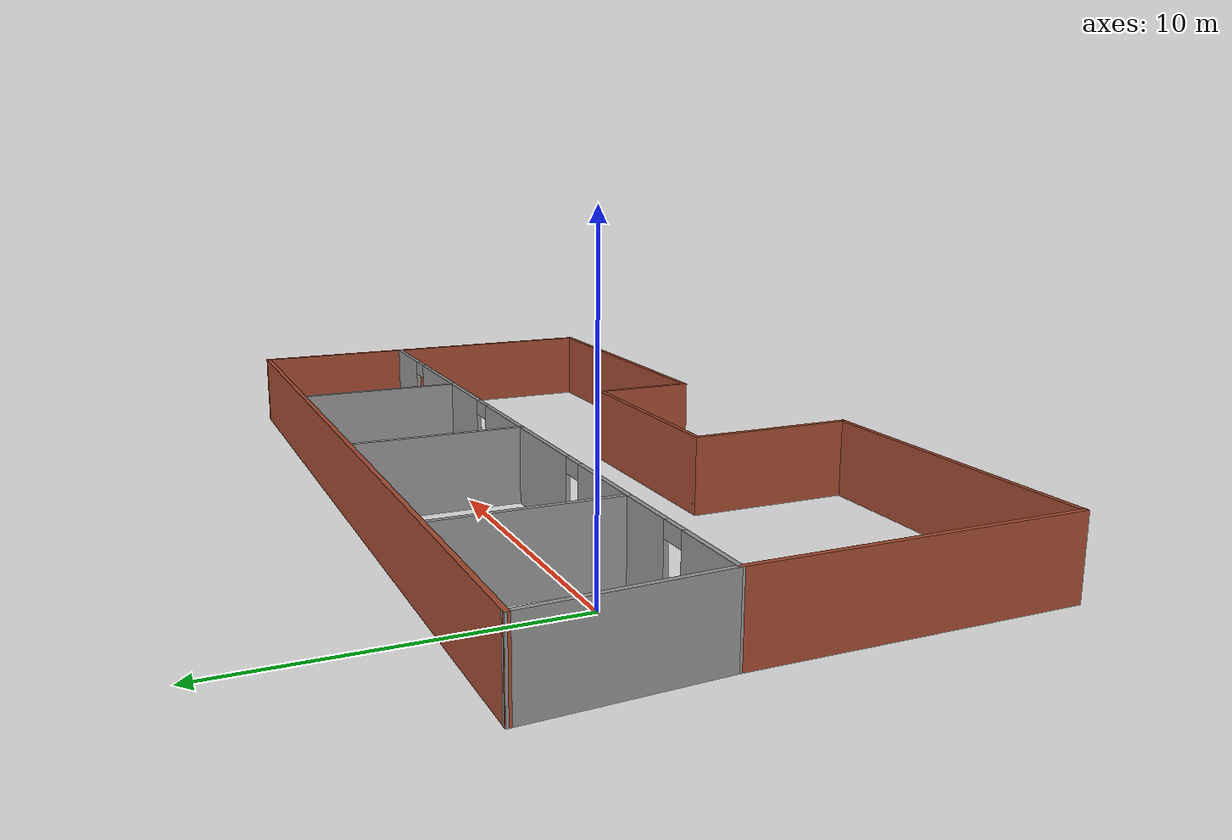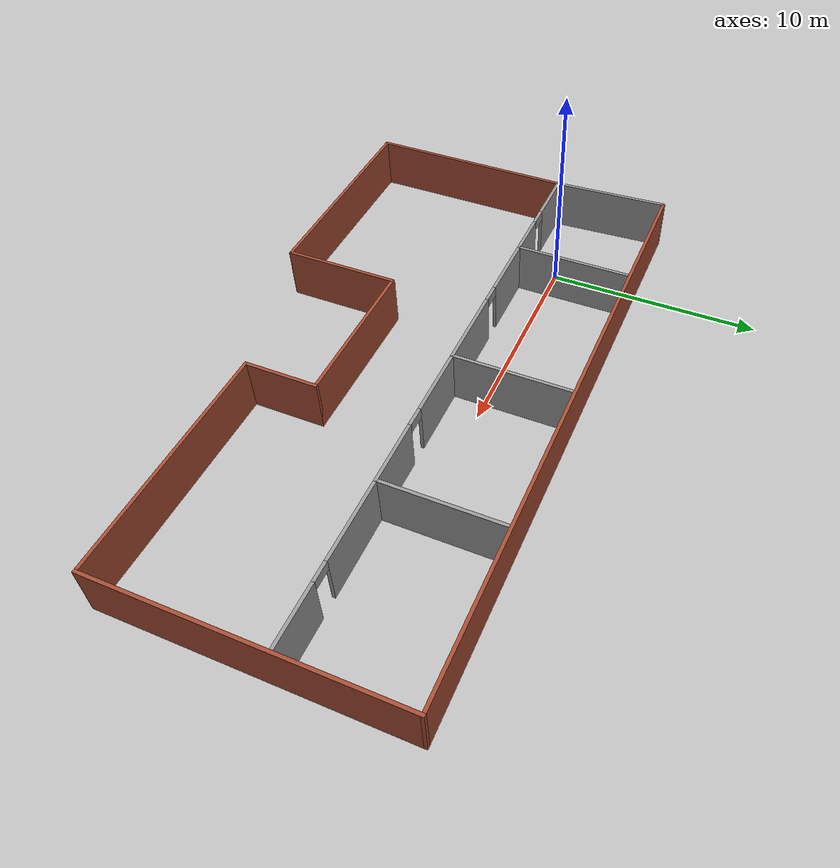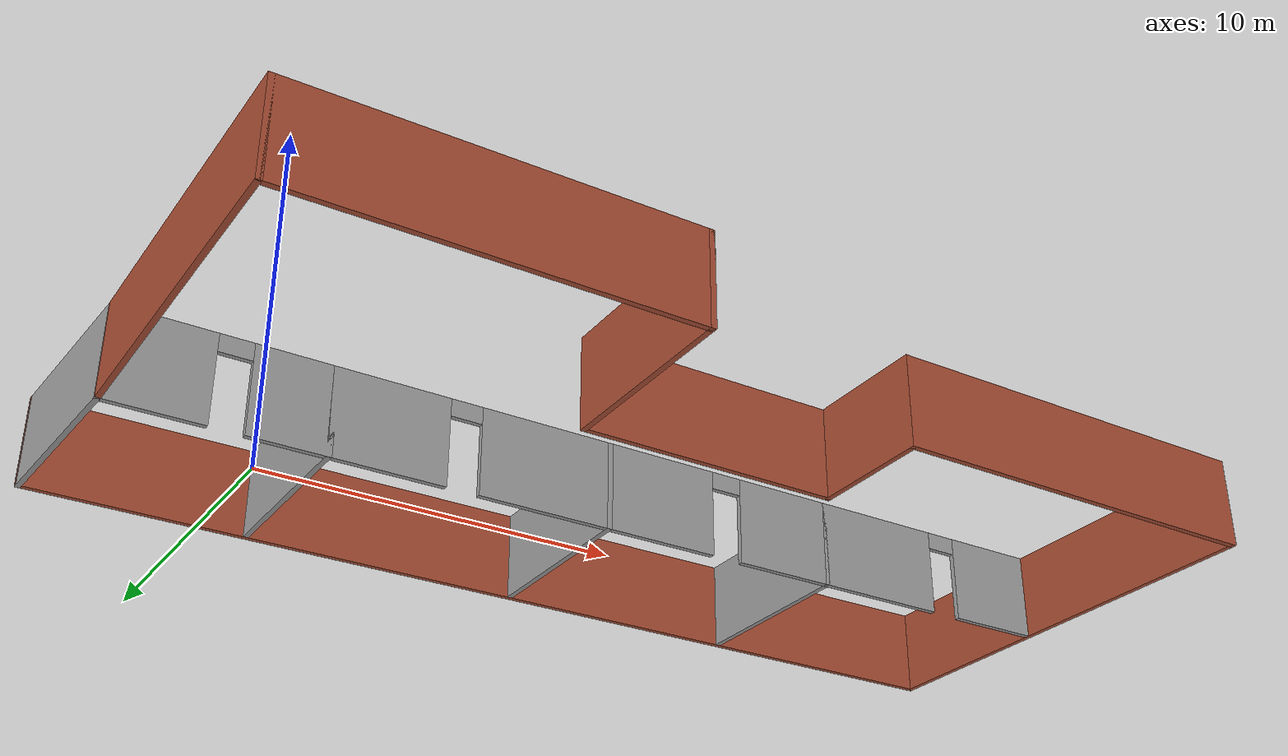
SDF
<?xml version='1.0'?>
<sdf version='1.6'>
  <model name='MyOffice'>
    <pose frame=''>9.60301 -3.65301 0 0 -0 0</pose>
    <link name='Wall_0'>
      <collision name='Wall_0_Collision'>
        <geometry>
          <box>
            <size>10 0.15 2.5</size>
          </box>
        </geometry>
        <pose frame=''>0 0 1.25 0 -0 0</pose>
      </collision>
      <visual name='Wall_0_Visual'>
        <pose frame=''>0 0 1.25 0 -0 0</pose>
        <geometry>
          <box>
            <size>10 0.15 2.5</size>
          </box>
        </geometry>
        <material>
          <script>
            <uri>file://media/materials/scripts/gazebo.material</uri>
            <name>Gazebo/Bricks</name>
          </script>
          <ambient>1 1 1 1</ambient>
        </material>
        <meta>
          <layer>0</layer>
        </meta>
      </visual>
      <pose frame=''>-13.873 -2.75199 0 0 0 -1.5708</pose>
    </link>
    <link name='Wall_1'>
      <collision name='Wall_1_Collision'>
        <geometry>
          <box>
            <size>10.25 0.15 2.5</size>
          </box>
        </geometry>
        <pose frame=''>0 0 1.25 0 -0 0</pose>
      </collision>
      <visual name='Wall_1_Visual'>
        <pose frame=''>0 0 1.25 0 -0 0</pose>
        <geometry>
          <box>
            <size>10.25 0.15 2.5</size>
          </box>
        </geometry>
        <material>
          <script>
            <uri>file://media/materials/scripts/gazebo.material</uri>
            <name>Gazebo/Bricks</name>
          </script>
          <ambient>1 1 1 1</ambient>
        </material>
        <meta>
          <layer>0</layer>
        </meta>
      </visual>
      <pose frame=''>-8.82301 -7.67699 0 0 -0 0</pose>
    </link>
    <link name='Wall_10'>
      <collision name='Wall_10_Collision'>
        <geometry>
          <box>
            <size>5.5 0.15 2.5</size>
          </box>
        </geometry>
        <pose frame=''>0 0 1.25 0 -0 0</pose>
      </collision>
      <visual name='Wall_10_Visual'>
        <pose frame=''>0 0 1.25 0 -0 0</pose>
        <geometry>
          <box>
            <size>5.5 0.15 2.5</size>
          </box>
        </geometry>
        <material>
          <script>
            <uri>file://media/materials/scripts/gazebo.material</uri>
            <name>Gazebo/Grey</name>
          </script>
          <ambient>1 1 1 1</ambient>
        </material>
        <meta>
          <layer>0</layer>
        </meta>
      </visual>
      <pose frame=''>-8.27301 4.84801 0 0 -0 1.5708</pose>
    </link>
    <link name='Wall_12'>
      <pose frame=''>-4.34801 2.17301 0 0 -0 0</pose>
      <visual name='Wall_12_Visual_0'>
        <pose frame=''>-2.39397 0 1.25 0 -0 0</pose>
        <geometry>
          <box>
            <size>3.21206 0.15 2.5</size>
          </box>
        </geometry>
        <material>
          <script>
            <uri>file://media/materials/scripts/gazebo.material</uri>
            <name>Gazebo/Grey</name>
          </script>
          <ambient>1 1 1 1</ambient>
        </material>
        <meta>
          <layer>0</layer>
        </meta>
      </visual>
      <collision name='Wall_12_Collision_0'>
        <geometry>
          <box>
            <size>3.21206 0.15 2.5</size>
          </box>
        </geometry>
        <pose frame=''>-2.39397 0 1.25 0 -0 0</pose>
      </collision>
      <visual name='Wall_12_Visual_1'>
        <pose frame=''>2.05603 0 1.25 0 -0 0</pose>
        <geometry>
          <box>
            <size>3.88794 0.15 2.5</size>
          </box>
        </geometry>
        <material>
          <script>
            <uri>file://media/materials/scripts/gazebo.material</uri>
            <name>Gazebo/Grey</name>
          </script>
          <ambient>1 1 1 1</ambient>
        </material>
        <meta>
          <layer>0</layer>
        </meta>
      </visual>
      <collision name='Wall_12_Collision_1'>
        <geometry>
          <box>
            <size>3.88794 0.15 2.5</size>
          </box>
        </geometry>
        <pose frame=''>2.05603 0 1.25 0 -0 0</pose>
      </collision>
      <visual name='Wall_12_Visual_2'>
        <pose frame=''>-0.337937 0 2.25 0 -0 0</pose>
        <geometry>
          <box>
            <size>0.9 0.15 0.5</size>
          </box>
        </geometry>
        <material>
          <script>
            <uri>file://media/materials/scripts/gazebo.material</uri>
            <name>Gazebo/Grey</name>
          </script>
          <ambient>1 1 1 1</ambient>
        </material>
        <meta>
          <layer>0</layer>
        </meta>
      </visual>
      <collision name='Wall_12_Collision_2'>
        <geometry>
          <box>
            <size>0.9 0.15 0.5</size>
          </box>
        </geometry>
        <pose frame=''>-0.337937 0 2.25 0 -0 0</pose>
      </collision>
    </link>
    <link name='Wall_13'>
      <collision name='Wall_13_Collision'>
        <geometry>
          <box>
            <size>5.5 0.15 2.5</size>
          </box>
        </geometry>
        <pose frame=''>0 0 1.25 0 -0 0</pose>
      </collision>
      <visual name='Wall_13_Visual'>
        <pose frame=''>0 0 1.25 0 -0 0</pose>
        <geometry>
          <box>
            <size>5.5 0.15 2.5</size>
          </box>
        </geometry>
        <material>
          <script>
            <uri>file://media/materials/scripts/gazebo.material</uri>
            <name>Gazebo/Grey</name>
          </script>
          <ambient>1 1 1 1</ambient>
        </material>
        <meta>
          <layer>0</layer>
        </meta>
      </visual>
      <pose frame=''>-0.423014 4.84801 0 0 -0 1.5708</pose>
    </link>
    <link name='Wall_15'>
      <pose frame=''>3.12699 2.17301 0 0 -0 0</pose>
      <visual name='Wall_15_Visual_0'>
        <pose frame=''>-1.95623 0 1.25 0 -0 0</pose>
        <geometry>
          <box>
            <size>3.33753 0.15 2.5</size>
          </box>
        </geometry>
        <material>
          <script>
            <uri>file://media/materials/scripts/gazebo.material</uri>
            <name>Gazebo/Grey</name>
          </script>
          <ambient>1 1 1 1</ambient>
        </material>
        <meta>
          <layer>0</layer>
        </meta>
      </visual>
      <collision name='Wall_15_Collision_0'>
        <geometry>
          <box>
            <size>3.33753 0.15 2.5</size>
          </box>
        </geometry>
        <pose frame=''>-1.95623 0 1.25 0 -0 0</pose>
      </collision>
      <visual name='Wall_15_Visual_1'>
        <pose frame=''>2.11877 0 1.25 0 -0 0</pose>
        <geometry>
          <box>
            <size>3.01247 0.15 2.5</size>
          </box>
        </geometry>
        <material>
          <script>
            <uri>file://media/materials/scripts/gazebo.material</uri>
            <name>Gazebo/Grey</name>
          </script>
          <ambient>1 1 1 1</ambient>
        </material>
        <meta>
          <layer>0</layer>
        </meta>
      </visual>
      <collision name='Wall_15_Collision_1'>
        <geometry>
          <box>
            <size>3.01247 0.15 2.5</size>
          </box>
        </geometry>
        <pose frame=''>2.11877 0 1.25 0 -0 0</pose>
      </collision>
      <visual name='Wall_15_Visual_2'>
        <pose frame=''>0.162532 0 2.25 0 -0 0</pose>
        <geometry>
          <box>
            <size>0.9 0.15 0.5</size>
          </box>
        </geometry>
        <material>
          <script>
            <uri>file://media/materials/scripts/gazebo.material</uri>
            <name>Gazebo/Grey</name>
          </script>
          <ambient>1 1 1 1</ambient>
        </material>
        <meta>
          <layer>0</layer>
        </meta>
      </visual>
      <collision name='Wall_15_Collision_2'>
        <geometry>
          <box>
            <size>0.9 0.15 0.5</size>
          </box>
        </geometry>
        <pose frame=''>0.162532 0 2.25 0 -0 0</pose>
      </collision>
    </link>
    <link name='Wall_16'>
      <collision name='Wall_16_Collision'>
        <geometry>
          <box>
            <size>5.5 0.15 2.5</size>
          </box>
        </geometry>
        <pose frame=''>0 0 1.25 0 -0 0</pose>
      </collision>
      <visual name='Wall_16_Visual'>
        <pose frame=''>0 0 1.25 0 -0 0</pose>
        <geometry>
          <box>
            <size>5.5 0.15 2.5</size>
          </box>
        </geometry>
        <material>
          <script>
            <uri>file://media/materials/scripts/gazebo.material</uri>
            <name>Gazebo/Grey</name>
          </script>
          <ambient>1 1 1 1</ambient>
        </material>
        <meta>
          <layer>0</layer>
        </meta>
      </visual>
      <pose frame=''>6.67699 4.84801 0 0 -0 1.5708</pose>
    </link>
    <link name='Wall_18'>
      <pose frame=''>10.352 2.17301 0 0 -0 0</pose>
      <visual name='Wall_18_Visual_0'>
        <pose frame=''>-1.80674 0 1.25 0 -0 0</pose>
        <geometry>
          <box>
            <size>3.88652 0.15 2.5</size>
          </box>
        </geometry>
        <material>
          <script>
            <uri>file://media/materials/scripts/gazebo.material</uri>
            <name>Gazebo/Grey</name>
          </script>
          <ambient>1 1 1 1</ambient>
        </material>
        <meta>
          <layer>0</layer>
        </meta>
      </visual>
      <collision name='Wall_18_Collision_0'>
        <geometry>
          <box>
            <size>3.88652 0.15 2.5</size>
          </box>
        </geometry>
        <pose frame=''>-1.80674 0 1.25 0 -0 0</pose>
      </collision>
      <visual name='Wall_18_Visual_1'>
        <pose frame=''>2.39326 0 1.25 0 -0 0</pose>
        <geometry>
          <box>
            <size>2.71348 0.15 2.5</size>
          </box>
        </geometry>
        <material>
          <script>
            <uri>file://media/materials/scripts/gazebo.material</uri>
            <name>Gazebo/Grey</name>
          </script>
          <ambient>1 1 1 1</ambient>
        </material>
        <meta>
          <layer>0</layer>
        </meta>
      </visual>
      <collision name='Wall_18_Collision_1'>
        <geometry>
          <box>
            <size>2.71348 0.15 2.5</size>
          </box>
        </geometry>
        <pose frame=''>2.39326 0 1.25 0 -0 0</pose>
      </collision>
      <visual name='Wall_18_Visual_2'>
        <pose frame=''>0.586519 0 2.25 0 -0 0</pose>
        <geometry>
          <box>
            <size>0.9 0.15 0.5</size>
          </box>
        </geometry>
        <material>
          <script>
            <uri>file://media/materials/scripts/gazebo.material</uri>
            <name>Gazebo/Grey</name>
          </script>
          <ambient>1 1 1 1</ambient>
        </material>
        <meta>
          <layer>0</layer>
        </meta>
      </visual>
      <collision name='Wall_18_Collision_2'>
        <geometry>
          <box>
            <size>0.9 0.15 0.5</size>
          </box>
        </geometry>
        <pose frame=''>0.586519 0 2.25 0 -0 0</pose>
      </collision>
    </link>
    <link name='Wall_2'>
      <collision name='Wall_2_Collision'>
        <geometry>
          <box>
            <size>5.5 0.15 2.5</size>
          </box>
        </geometry>
        <pose frame=''>0 0 1.25 0 -0 0</pose>
      </collision>
      <visual name='Wall_2_Visual'>
        <pose frame=''>0 0 1.25 0 -0 0</pose>
        <geometry>
          <box>
            <size>5.5 0.15 2.5</size>
          </box>
        </geometry>
        <material>
          <script>
            <uri>file://media/materials/scripts/gazebo.material</uri>
            <name>Gazebo/Bricks</name>
          </script>
          <ambient>1 1 1 1</ambient>
        </material>
        <meta>
          <layer>0</layer>
        </meta>
      </visual>
      <pose frame=''>-3.77301 -5.00199 0 0 -0 1.5708</pose>
    </link>
    <link name='Wall_3'>
      <collision name='Wall_3_Collision'>
        <geometry>
          <box>
            <size>7.25 0.15 2.5</size>
          </box>
        </geometry>
        <pose frame=''>0 0 1.25 0 -0 0</pose>
      </collision>
      <visual name='Wall_3_Visual'>
        <pose frame=''>0 0 1.25 0 -0 0</pose>
        <geometry>
          <box>
            <size>7.25 0.15 2.5</size>
          </box>
        </geometry>
        <material>
          <script>
            <uri>file://media/materials/scripts/gazebo.material</uri>
            <name>Gazebo/Bricks</name>
          </script>
          <ambient>1 1 1 1</ambient>
        </material>
        <meta>
          <layer>0</layer>
        </meta>
      </visual>
      <pose frame=''>-0.223014 -2.32699 0 0 -0 0</pose>
    </link>
    <link name='Wall_4'>
      <collision name='Wall_4_Collision'>
        <geometry>
          <box>
            <size>3.5 0.15 2.5</size>
          </box>
        </geometry>
        <pose frame=''>0 0 1.25 0 -0 0</pose>
      </collision>
      <visual name='Wall_4_Visual'>
        <pose frame=''>0 0 1.25 0 -0 0</pose>
        <geometry>
          <box>
            <size>3.5 0.15 2.5</size>
          </box>
        </geometry>
        <material>
          <script>
            <uri>file://media/materials/scripts/gazebo.material</uri>
            <name>Gazebo/Bricks</name>
          </script>
          <ambient>1 1 1 1</ambient>
        </material>
        <meta>
          <layer>0</layer>
        </meta>
      </visual>
      <pose frame=''>3.32699 -4.00199 0 0 0 -1.5708</pose>
    </link>
    <link name='Wall_5'>
      <collision name='Wall_5_Collision'>
        <geometry>
          <box>
            <size>11 0.15 2.5</size>
          </box>
        </geometry>
        <pose frame=''>0 0 1.25 0 -0 0</pose>
      </collision>
      <visual name='Wall_5_Visual'>
        <pose frame=''>0 0 1.25 0 -0 0</pose>
        <geometry>
          <box>
            <size>11 0.15 2.5</size>
          </box>
        </geometry>
        <material>
          <script>
            <uri>file://media/materials/scripts/gazebo.material</uri>
            <name>Gazebo/Bricks</name>
          </script>
          <ambient>1 1 1 1</ambient>
        </material>
        <meta>
          <layer>0</layer>
        </meta>
      </visual>
      <pose frame=''>8.75199 -5.67699 0 0 -0 0</pose>
    </link>
    <link name='Wall_6'>
      <collision name='Wall_6_Collision'>
        <geometry>
          <box>
            <size>13.5 0.15 2.5</size>
          </box>
        </geometry>
        <pose frame=''>0 0 1.25 0 -0 0</pose>
      </collision>
      <visual name='Wall_6_Visual'>
        <pose frame=''>0 0 1.25 0 -0 0</pose>
        <geometry>
          <box>
            <size>13.5 0.15 2.5</size>
          </box>
        </geometry>
        <material>
          <script>
            <uri>file://media/materials/scripts/gazebo.material</uri>
            <name>Gazebo/Bricks</name>
          </script>
          <ambient>1 1 1 1</ambient>
        </material>
        <meta>
          <layer>0</layer>
        </meta>
      </visual>
      <pose frame=''>14.177 0.998013 0 0 -0 1.5708</pose>
    </link>
    <link name='Wall_7'>
      <collision name='Wall_7_Collision'>
        <geometry>
          <box>
            <size>28.5 0.15 2.5</size>
          </box>
        </geometry>
        <pose frame=''>0 0 1.25 0 -0 0</pose>
      </collision>
      <visual name='Wall_7_Visual'>
        <pose frame=''>0 0 1.25 0 -0 0</pose>
        <geometry>
          <box>
            <size>28.5 0.15 2.5</size>
          </box>
        </geometry>
        <material>
          <script>
            <uri>file://media/materials/scripts/gazebo.material</uri>
            <name>Gazebo/Bricks</name>
          </script>
          <ambient>1 1 1 1</ambient>
        </material>
        <meta>
          <layer>0</layer>
        </meta>
      </visual>
      <pose frame=''>0.001986 7.67301 0 0 -0 3.14159</pose>
    </link>
    <link name='Wall_8'>
      <collision name='Wall_8_Collision'>
        <geometry>
          <box>
            <size>5.65818 0.15 2.5</size>
          </box>
        </geometry>
        <pose frame=''>0 0 1.25 0 -0 0</pose>
      </collision>
      <visual name='Wall_8_Visual'>
        <pose frame=''>0 0 1.25 0 -0 0</pose>
        <geometry>
          <box>
            <size>5.65818 0.15 2.5</size>
          </box>
        </geometry>
        <material>
          <script>
            <uri>file://media/materials/scripts/gazebo.material</uri>
            <name>Gazebo/Grey</name>
          </script>
          <ambient>1 1 1 1</ambient>
        </material>
        <meta>
          <layer>0</layer>
        </meta>
      </visual>
      <pose frame=''>-14.023 4.92301 0 0 0 -1.51631</pose>
    </link>
    <link name='Wall_9'>
      <pose frame=''>-11.073 2.17301 0 0 -0 0</pose>
      <visual name='Wall_9_Visual_0'>
        <pose frame=''>-1.54722 0 1.25 0 -0 0</pose>
        <geometry>
          <box>
            <size>2.65556 0.15 2.5</size>
          </box>
        </geometry>
        <material>
          <script>
            <uri>file://media/materials/scripts/gazebo.material</uri>
            <name>Gazebo/Grey</name>
          </script>
          <ambient>1 1 1 1</ambient>
        </material>
        <meta>
          <layer>0</layer>
        </meta>
      </visual>
      <collision name='Wall_9_Collision_0'>
        <geometry>
          <box>
            <size>2.65556 0.15 2.5</size>
          </box>
        </geometry>
        <pose frame=''>-1.54722 0 1.25 0 -0 0</pose>
      </collision>
      <visual name='Wall_9_Visual_1'>
        <pose frame=''>1.77778 0 1.25 0 -0 0</pose>
        <geometry>
          <box>
            <size>2.19444 0.15 2.5</size>
          </box>
        </geometry>
        <material>
          <script>
            <uri>file://media/materials/scripts/gazebo.material</uri>
            <name>Gazebo/Grey</name>
          </script>
          <ambient>1 1 1 1</ambient>
        </material>
        <meta>
          <layer>0</layer>
        </meta>
      </visual>
      <collision name='Wall_9_Collision_1'>
        <geometry>
          <box>
            <size>2.19444 0.15 2.5</size>
          </box>
        </geometry>
        <pose frame=''>1.77778 0 1.25 0 -0 0</pose>
      </collision>
      <visual name='Wall_9_Visual_2'>
        <pose frame=''>0.230561 0 2.25 0 -0 0</pose>
        <geometry>
          <box>
            <size>0.9 0.15 0.5</size>
          </box>
        </geometry>
        <material>
          <script>
            <uri>file://media/materials/scripts/gazebo.material</uri>
            <name>Gazebo/Grey</name>
          </script>
          <ambient>1 1 1 1</ambient>
        </material>
        <meta>
          <layer>0</layer>
        </meta>
      </visual>
      <collision name='Wall_9_Collision_2'>
        <geometry>
          <box>
            <size>0.9 0.15 0.5</size>
          </box>
        </geometry>
        <pose frame=''>0.230561 0 2.25 0 -0 0</pose>
      </collision>
    </link>
    <static>1</static>
  </model>
</sdf>
